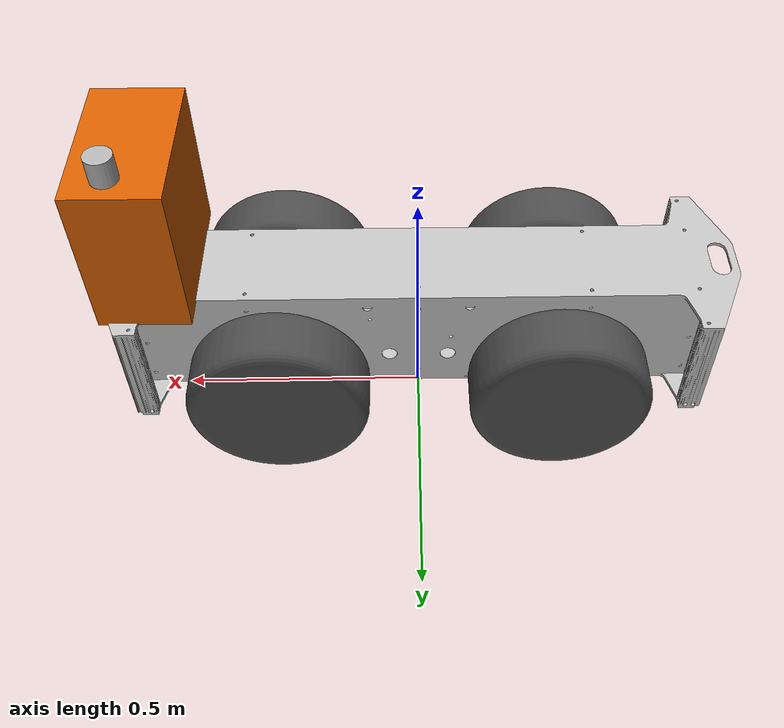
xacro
<?xml version="1.0" ?>
<robot name="sly_bot" xmlns:xacro="http://www.ros.org/wiki/xacro">

  <xacro:include filename="$(find sly_description)/urdf/nav_box.xacro" />
  <xacro:include filename="$(find sly_description)/urdf/sly.xacro" />

  <xacro:sly/>

  <xacro:nav_box_macro parent="base_link" nav_box_name="nav_box" origin_xyz =" ${((17+3)*0.0254)} 0 ${((14+6)*0.0254)}" length="${(12*0.0254)}" width="${(12*0.0254)}" height="${(109*0.0015875)}" rpy="0 1.57 0"/>

</robot>

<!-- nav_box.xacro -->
<robot xmlns:xacro="http://www.ros.org/wiki/xacro">

    <!-- Caster Wheels-->
  <xacro:macro  name="nav_box_macro" params="parent nav_box_name origin_xyz rpy length width height">
      <!-- CASTER FRONT-->
    <link name="${nav_box_name}_link">
      <inertial>
          <mass value="0.001"/>
          <origin rpy="0 0 0" xyz="0 0 0"/>
          <inertia ixx="0.001" ixy = "0" ixz="0"
                    iyy="0.001" iyz= "0"
                    izz="0.001" />
        </inertial>
        <collision name="nav_box_collision">
          <origin rpy="0 1.5707 1.5707" xyz="0 0 0"/>
          <geometry>
            <box size="${length} ${width} ${height}"/>
          </geometry>
        </collision>
        <visual name="nav_box_visual">
          <geometry>
            <box size="${length} ${width} ${height}"/>
          </geometry>
        </visual>
    </link>

    <link name="imu_link">
      <inertial>
          <mass value="0.001"/>
          <origin rpy="0 0 0" xyz="0 0 0"/>
          <inertia ixx="0.001" ixy = "0" ixz="0"
                    iyy="0.001" iyz= "0"
                    izz="0.001" />
        </inertial>
        <collision name="nav_box_collision">
          <origin rpy="0 1.5707 1.5707" xyz="0 0 0"/>
          <geometry>
            <box size="0.0254 0.0254 0.0254"/>
          </geometry>
        </collision>
        <visual name="nav_box_visual">
          <geometry>
            <box size="0.0254 0.0254 0.0254"/>
          </geometry>
        </visual>
    </link>

    <link name="gps_link">
      <inertial>
          <mass value="0.001"/>
          <origin rpy="0 0 0" xyz="0 0 0"/>
          <inertia ixx="0.001" ixy = "0" ixz="0"
                    iyy="0.001" iyz= "0"
                    izz="0.001" />
        </inertial>
        <collision name="nav_box_collision">
          <origin rpy="0 0 0" xyz="0 0 0"/>
          <geometry>
            <cylinder radius="0.0254" length="0.0508"/>
          </geometry>
        </collision>
        <visual name="nav_box_visual">
          <geometry>
            <cylinder radius="0.0254" length="0.0508"/>
          </geometry>
        </visual>
    </link>

    <joint name="${nav_box_name}_joint" type="fixed">
      <origin rpy="${rpy}" xyz="${origin_xyz}" />
      <parent link="${parent}" />
      <child link="${nav_box_name}_link" />
      <axis xyz="0 0 1" />
    </joint>

    <joint name="imu_joint" type="fixed">
      <origin rpy="1.57 0 0" xyz="0.1397 0.088 0.01524" />
      <parent link="${nav_box_name}_link" />
      <child link="imu_link" />
      <axis xyz="0 0 1" />
    </joint>

    <joint name="gps_joint" type="fixed">
      <origin rpy="0 1.57 0" xyz="-0.1774 0.1016 0.01524" />
      <parent link="${nav_box_name}_link" />
      <child link="gps_link" />
      <axis xyz="0 0 1" />
    </joint>

  </xacro:macro >
</robot>

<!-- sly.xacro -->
<robot xmlns:xacro="http://www.ros.org/wiki/xacro">
  <xacro:macro
    name="sly">
    <link
      name="base_link">
      <inertial>
        <origin
          xyz="-1.579E-05 -0.00013599 0.23643132"
          rpy="0 0 0" />
        <mass
          value="45" />
        <inertia
          ixx="2.9337"
          ixy="0.0080257"
          ixz="-0.00019718"
          iyy="11.131"
          iyz="-0.0012284"
          izz="8.5524" />
      </inertial>
      <visual>
        <origin
          xyz="0 0 0"
          rpy="0 0 0" />
        <geometry>
          <mesh
            filename="package://sly_description/models/sly/meshes/base_link.STL" />
        </geometry>
        <material
          name="">
          <color
            rgba="0.75294 0.75294 0.75294 1" />
        </material>
      </visual>
      <collision>
        <origin
          xyz="0 0 0"
          rpy="0 0 0" />
        <geometry>
          <mesh
            filename="package://sly_description/models/sly/meshes/base_link.STL" />
        </geometry>
      </collision>
    </link>
    <link
      name="wheel_0">
      <inertial>
        <origin
          xyz="0 0 0"
          rpy="0 0 0" />
        <mass
          value="6.5" />
        <inertia
          ixx="0.058691"
          ixy="0"
          ixz="0"
          iyy="0.58691"
          iyz="0"
          izz="0.10055" />
      </inertial>
      <visual>
        <origin
          xyz="0 0 0"
          rpy="0 0 0" />
        <geometry>
          <mesh
            filename="package://sly_description/models/sly/meshes/wheel_0.STL" />
        </geometry>
        <material
          name="">
          <color
            rgba="0.29804 0.29804 0.29804 1" />
        </material>
      </visual>
      <collision>
        <origin
          xyz="0 0 0"
          rpy="0 0 0" />
        <geometry>
          <mesh
            filename="package://sly_description/models/sly/meshes/wheel_0.STL" />
        </geometry>
      </collision>
    </link>
    <joint
      name="axial_0_0"
      type="continuous">
      <origin
        xyz="0.2761 -0.17457 0.1778"
        rpy="1.5708 0 3.1416" />
      <parent
        link="base_link" />
      <child
        link="wheel_0" />
      <axis
        xyz="0 0 -1" />
    </joint>
    <link
      name="wheel_1">
      <inertial>
        <origin
          xyz="0 0 0"
          rpy="0 0 0" />
        <mass
          value="6.5" />
        <inertia
          ixx="0.058691"
          ixy="0"
          ixz="0"
          iyy="0.058691"
          iyz="0"
          izz="0.10055" />
      </inertial>
      <visual>
        <origin
          xyz="0 0 0"
          rpy="0 0 0" />
        <geometry>
          <mesh
            filename="package://sly_description/models/sly/meshes/wheel_1.STL" />
        </geometry>
        <material
          name="">
          <color
            rgba="0.29804 0.29804 0.29804 1" />
        </material>
      </visual>
      <collision>
        <origin
          xyz="0 0 0"
          rpy="0 0 0" />
        <geometry>
          <mesh
            filename="package://sly_description/models/sly/meshes/wheel_1.STL" />
        </geometry>
      </collision>
    </link>
    <joint
      name="axial_0_1"
      type="continuous">
      <origin
        xyz="0.276098000805913 0.17467779424094 0.1778"
        rpy="-1.5707963267949 0 0" />
      <parent
        link="base_link" />
      <child
        link="wheel_1" />
      <axis
        xyz="0 0 -1" />
    </joint>
    <link
      name="wheel_2">
      <inertial>
        <origin
          xyz="0 0 0"
          rpy="0 0 0" />
        <mass
          value="6.5" />
        <inertia
          ixx="0.058691"
          ixy="0"
          ixz="0"
          iyy="0.058691"
          iyz="0"
          izz="0.10055" />
      </inertial>
      <visual>
        <origin
          xyz="0 0 0"
          rpy="0 0 0" />
        <geometry>
          <mesh
            filename="package://sly_description/models/sly/meshes/wheel_2.STL" />
        </geometry>
        <material
          name="">
          <color
            rgba="0.29804 0.29804 0.29804 1" />
        </material>
      </visual>
      <collision>
        <origin
          xyz="0 0 0"
          rpy="0 0 0" />
        <geometry>
          <mesh
            filename="package://sly_description/models/sly/meshes/wheel_2.STL" />
        </geometry>
      </collision>
    </link>
    <joint
      name="axial_1_0"
      type="continuous">
      <origin
        xyz="-0.2761 0.17448 0.1778"
        rpy="-1.5708 0 0" />
      <parent
        link="base_link" />
      <child
        link="wheel_2" />
      <axis
        xyz="0 0 -1" />
    </joint>
    <link
      name="wheel_3">
      <inertial>
        <origin
          xyz="0 0 0"
          rpy="0 0 0" />
        <mass
          value="6.5" />
        <inertia
          ixx="0.058691"
          ixy="0"
          ixz="0"
          iyy="0.058691"
          iyz="0"
          izz="0.10055" />
      </inertial>
      <visual>
        <origin
          xyz="0 0 0"
          rpy="0 0 0" />
        <geometry>
          <mesh
            filename="package://sly_description/models/sly/meshes/wheel_3.STL" />
        </geometry>
        <material
          name="">
          <color
            rgba="0.29804 0.29804 0.29804 1" />
        </material>
      </visual>
      <collision>
        <origin
          xyz="0 0 0"
          rpy="0 0 0" />
        <geometry>
          <mesh
            filename="package://sly_description/models/sly/meshes/wheel_3.STL" />
        </geometry>
      </collision>
    </link>
    <joint
      name="axial_1_1"
      type="continuous">
      <origin
        xyz="-0.2761 -0.17477 0.1778"
        rpy="-1.5708 0 0" />
      <parent
        link="base_link" />
      <child
        link="wheel_3" />
      <axis
        xyz="0 0 -1" />
    </joint>
  </xacro:macro>
</robot>
